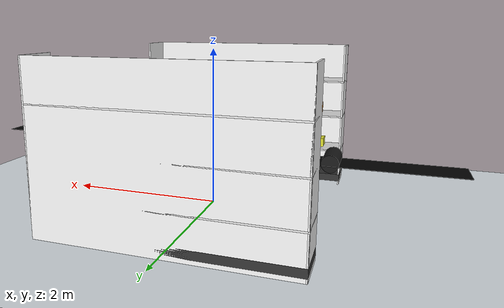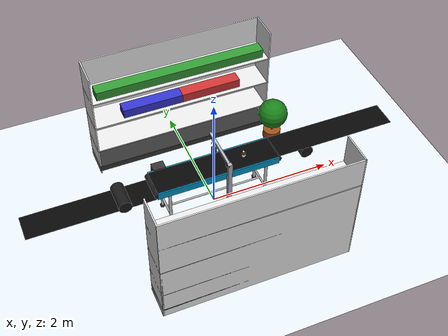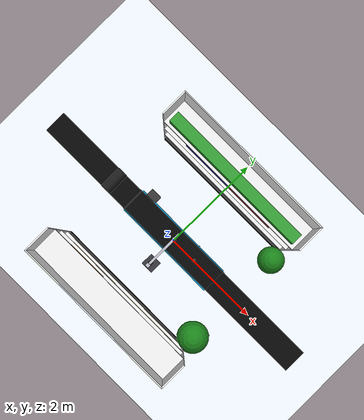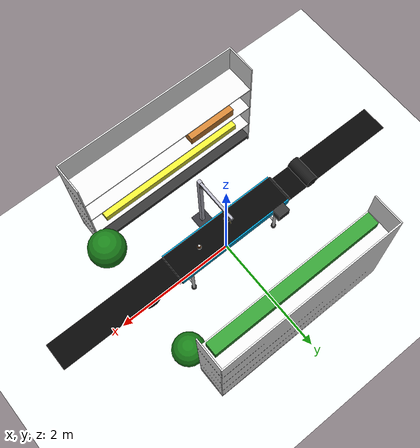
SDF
<sdf version="1.9">
 <world name="pharmacy_world">
  <physics name="1ms" type="ignored">
   <max_step_size>0.001</max_step_size>
   <real_time_factor>1.0</real_time_factor>
  </physics>
  <plugin filename="gz-sim-physics-system" name="gz::sim::systems::Physics"/>
  <plugin filename="gz-sim-user-commands-system" name="gz::sim::systems::UserCommands"/>
  <plugin filename="gz-sim-scene-broadcaster-system" name="gz::sim::systems::SceneBroadcaster"/>
  <plugin filename="gz-sim-sensors-system" name="gz::sim::systems::Sensors">
   <render_engine>ogre2</render_engine>
  </plugin>
  <scene><ambient>0.6 0.6 0.6 1.0</ambient><background>0.9 0.9 0.9 1.0</background><grid>false</grid></scene>
  <light type="point" name="ceiling_light_1">
   <pose>0 0 3 0 0 0</pose>
   <diffuse>0.9 0.9 0.9 1</diffuse>
   <specular>0.5 0.5 0.5 1</specular>
   <attenuation>
    <range>10</range>
    <constant>0.2</constant>
    <linear>0.1</linear>
    <quadratic>0.01</quadratic>
   </attenuation>
  </light>
  <light type="point" name="ceiling_light_2">
   <pose>2 0 3 0 0 0</pose>
   <diffuse>0.8 0.8 0.8 1</diffuse>
   <specular>0.3 0.3 0.3 1</specular>
   <attenuation>
    <range>10</range>
    <constant>0.2</constant>
    <linear>0.1</linear>
    <quadratic>0.01</quadratic>
   </attenuation>
   <cast_shadows>false</cast_shadows>
  </light>
  <model name="ground_plane">
   <static>true</static>
   <link name="link">
    <collision name="collision">
     <geometry><plane><normal>0 0 1</normal><size>100 100</size></plane></geometry>
    </collision>
    <visual name="visual">
     <geometry><plane><normal>0 0 1</normal><size>20 20</size></plane></geometry>
     <material>
      <ambient>0.9 0.93 0.95 1</ambient>
      <diffuse>0.9 0.93 0.95 1</diffuse>
      <specular>0.7 0.7 0.7 1</specular>
      <pbr><metal><roughness>0.2</roughness><metalness>0.1</metalness></metal></pbr>
     </material>
    </visual>
   </link>
  </model>
  <model name="moving_belt_A">
   <static>false</static>
   <pose>0 0 0.815 0 0 0</pose>
   <link name="belt_link">
    <visual name="visual">
     <geometry><box><size>2.0 0.44 0.004</size></box></geometry>
     <material>
      <ambient>0.02 0.02 0.02 1</ambient>
      <diffuse>0.02 0.02 0.02 1</diffuse>
      <specular>0.4 0.4 0.4 1</specular>
      <pbr><metal><roughness>0.7</roughness><metalness>0.0</metalness></metal></pbr>
     </material>
    </visual>
    <collision name="collision">
     <geometry><box><size>2.0 0.44 0.004</size></box></geometry>
     <surface><friction><ode><mu>100</mu><mu2>100</mu2></ode></friction></surface>
    </collision>
   </link>
   <plugin filename="ignition-gazebo-velocity-control-system" name="gz::sim::systems::VelocityControl"/>
  </model>
  <model name="moving_belt_B">
   <static>false</static>
   <pose>2.01 0 0.815 0 0 0</pose>
   <link name="belt_link">
    <visual name="visual">
     <geometry><box><size>2.0 0.44 0.004</size></box></geometry>
     <material>
      <ambient>0.02 0.02 0.02 1</ambient>
      <diffuse>0.02 0.02 0.02 1</diffuse>
      <specular>0.4 0.4 0.4 1</specular>
      <pbr><metal><roughness>0.7</roughness><metalness>0.0</metalness></metal></pbr>
     </material>
    </visual>
    <collision name="collision">
     <geometry><box><size>2.0 0.44 0.004</size></box></geometry>
     <surface><friction><ode><mu>100</mu><mu2>100</mu2></ode></friction></surface>
    </collision>
   </link>
   <plugin filename="ignition-gazebo-velocity-control-system" name="gz::sim::systems::VelocityControl"/>
  </model>
  <model name="moving_belt_A_return">
   <static>false</static>
   <pose>-2.01 0 0.68 0 0 0</pose>
   <link name="belt_link">
    <visual name="visual">
     <geometry><box><size>2.0 0.44 0.004</size></box></geometry>
     <material>
      <ambient>0.02 0.02 0.02 1</ambient>
      <diffuse>0.02 0.02 0.02 1</diffuse>
      <specular>0.4 0.4 0.4 1</specular>
      <pbr><metal><roughness>0.7</roughness><metalness>0.0</metalness></metal></pbr>
     </material>
    </visual>
    <collision name="collision">
     <geometry><box><size>2.0 0.44 0.004</size></box></geometry>
     <surface><friction><ode><mu>100</mu><mu2>100</mu2></ode></friction></surface>
    </collision>
   </link>
   <plugin filename="ignition-gazebo-velocity-control-system" name="gz::sim::systems::VelocityControl"/>
  </model>
  <model name="moving_belt_B_return">
   <static>false</static>
   <pose>0 0 0.68 0 0 0</pose>
   <link name="belt_link">
    <visual name="visual">
     <geometry><box><size>2.0 0.44 0.004</size></box></geometry>
     <material>
      <ambient>0.02 0.02 0.02 1</ambient>
      <diffuse>0.02 0.02 0.02 1</diffuse>
      <specular>0.4 0.4 0.4 1</specular>
      <pbr><metal><roughness>0.7</roughness><metalness>0.0</metalness></metal></pbr>
     </material>
    </visual>
    <collision name="collision">
     <geometry><box><size>2.0 0.44 0.004</size></box></geometry>
     <surface><friction><ode><mu>100</mu><mu2>100</mu2></ode></friction></surface>
    </collision>
   </link>
   <plugin filename="ignition-gazebo-velocity-control-system" name="gz::sim::systems::VelocityControl"/>
  </model>
  <model name="conveyor_belt">
   <static>true</static>
   <link name="support_structure">
    <visual name="leg_1">
     <pose>0.8 0.2 0.35 0 0 0</pose>
     <geometry><cylinder><radius>0.025</radius><length>0.7</length></cylinder></geometry>
     <material>
      <ambient>0.8 0.8 0.8 1</ambient>
      <diffuse>0.8 0.8 0.8 1</diffuse>
      <specular>0.5 0.5 0.5 1</specular>
     </material>
    </visual>
    <visual name="leg_2">
     <pose>0.8 -0.2 0.35 0 0 0</pose>
     <geometry><cylinder><radius>0.025</radius><length>0.7</length></cylinder></geometry>
     <material>
      <ambient>0.8 0.8 0.8 1</ambient>
      <diffuse>0.8 0.8 0.8 1</diffuse>
      <specular>0.5 0.5 0.5 1</specular>
     </material>
    </visual>
    <visual name="leg_3">
     <pose>-0.8 0.2 0.35 0 0 0</pose>
     <geometry><cylinder><radius>0.025</radius><length>0.7</length></cylinder></geometry>
     <material>
      <ambient>0.8 0.8 0.8 1</ambient>
      <diffuse>0.8 0.8 0.8 1</diffuse>
      <specular>0.5 0.5 0.5 1</specular>
     </material>
    </visual>
    <visual name="leg_4">
     <pose>-0.8 -0.2 0.35 0 0 0</pose>
     <geometry><cylinder><radius>0.025</radius><length>0.7</length></cylinder></geometry>
     <material>
      <ambient>0.8 0.8 0.8 1</ambient>
      <diffuse>0.8 0.8 0.8 1</diffuse>
      <specular>0.5 0.5 0.5 1</specular>
     </material>
    </visual>
    <visual name="foot_1">
     <pose>0.8 0.2 0.015 0 0 0</pose>
     <geometry><cylinder><radius>0.04</radius><length>0.03</length></cylinder></geometry>
     <material><ambient>0.1 0.1 0.1 1</ambient></material>
    </visual>
    <visual name="foot_2">
     <pose>0.8 -0.2 0.015 0 0 0</pose>
     <geometry><cylinder><radius>0.04</radius><length>0.03</length></cylinder></geometry>
     <material><ambient>0.1 0.1 0.1 1</ambient></material>
    </visual>
    <visual name="foot_3">
     <pose>-0.8 0.2 0.015 0 0 0</pose>
     <geometry><cylinder><radius>0.04</radius><length>0.03</length></cylinder></geometry>
     <material><ambient>0.1 0.1 0.1 1</ambient></material>
    </visual>
    <visual name="foot_4">
     <pose>-0.8 -0.2 0.015 0 0 0</pose>
     <geometry><cylinder><radius>0.04</radius><length>0.03</length></cylinder></geometry>
     <material><ambient>0.1 0.1 0.1 1</ambient></material>
    </visual>
    <visual name="roller_front">
     <pose>1.5 0 0.71 1.57 0 0</pose>
     <geometry><cylinder><radius>0.105</radius><length>0.44</length></cylinder></geometry>
     <material><ambient>0.1 0.1 0.1 1</ambient></material>
    </visual>
    <visual name="roller_back">
     <pose>-1.5 0 0.71 1.57 0 0</pose>
     <geometry><cylinder><radius>0.105</radius><length>0.44</length></cylinder></geometry>
     <material><ambient>0.1 0.1 0.1 1</ambient></material>
    </visual>
    <visual name="crossbeam_front">
     <pose>0.8 0 0.2 1.57 0 0</pose>
     <geometry><cylinder><radius>0.015</radius><length>0.4</length></cylinder></geometry>
     <material><ambient>0.7 0.7 0.7 1</ambient></material>
    </visual>
    <visual name="crossbeam_back">
     <pose>-0.8 0 0.2 1.57 0 0</pose>
     <geometry><cylinder><radius>0.015</radius><length>0.4</length></cylinder></geometry>
     <material><ambient>0.7 0.7 0.7 1</ambient></material>
    </visual>
    <visual name="crossbeam_long">
     <pose>0 0 0.2 0 1.57 0</pose>
     <geometry><cylinder><radius>0.015</radius><length>1.6</length></cylinder></geometry>
     <material><ambient>0.7 0.7 0.7 1</ambient></material>
    </visual>
   </link>
   <link name="frame">
    <pose>0 0 0.75 0 0 0</pose>
    <visual name="chassis">
     <geometry><box><size>2.0 0.45 0.12</size></box></geometry>
     <material>
      <ambient>0.15 0.15 0.15 1</ambient>
      <diffuse>0.15 0.15 0.15 1</diffuse>
      <specular>0.3 0.3 0.3 1</specular>
      <pbr><metal><roughness>0.4</roughness><metalness>0.2</metalness></metal></pbr>
     </material>
    </visual>
    <visual name="rail_left">
     <pose>0 0.235 0 0 0 0</pose>
     <geometry><box><size>2.0 0.02 0.12</size></box></geometry>
     <material>
      <ambient>0.0 0.6 0.8 1</ambient>
      <diffuse>0.0 0.6 0.8 1</diffuse>
      <specular>0.5 0.5 0.5 1</specular>
      <pbr><metal><roughness>0.3</roughness><metalness>0.0</metalness></metal></pbr>
     </material>
    </visual>
    <visual name="rail_right">
     <pose>0 -0.235 0 0 0 0</pose>
     <geometry><box><size>2.0 0.02 0.12</size></box></geometry>
     <material>
      <ambient>0.0 0.6 0.8 1</ambient>
      <diffuse>0.0 0.6 0.8 1</diffuse>
      <specular>0.5 0.5 0.5 1</specular>
      <pbr><metal><roughness>0.3</roughness><metalness>0.0</metalness></metal></pbr>
     </material>
    </visual>
    <visual name="roller_front">
     <pose>1.0 0 0 1.57 0 0</pose>
     <geometry><cylinder><radius>0.05</radius><length>0.45</length></cylinder></geometry>
     <material><ambient>0.1 0.1 0.1 1</ambient></material>
    </visual>
    <visual name="roller_back">
     <pose>-1.0 0 0 1.57 0 0</pose>
     <geometry><cylinder><radius>0.05</radius><length>0.45</length></cylinder></geometry>
     <material><ambient>0.1 0.1 0.1 1</ambient></material>
    </visual>
    <visual name="bolt_1">
     <pose>0.8 0.25 0 0 1.57 0</pose>
     <geometry><cylinder><radius>0.005</radius><length>0.02</length></cylinder></geometry>
     <material><ambient>0.8 0.8 0.8 1</ambient></material>
    </visual>
    <visual name="bolt_2">
     <pose>0.4 0.25 0 0 1.57 0</pose>
     <geometry><cylinder><radius>0.005</radius><length>0.02</length></cylinder></geometry>
     <material><ambient>0.8 0.8 0.8 1</ambient></material>
    </visual>
    <visual name="bolt_3">
     <pose>0.0 0.25 0 0 1.57 0</pose>
     <geometry><cylinder><radius>0.005</radius><length>0.02</length></cylinder></geometry>
     <material><ambient>0.8 0.8 0.8 1</ambient></material>
    </visual>
    <visual name="bolt_4">
     <pose>-0.4 0.25 0 0 1.57 0</pose>
     <geometry><cylinder><radius>0.005</radius><length>0.02</length></cylinder></geometry>
     <material><ambient>0.8 0.8 0.8 1</ambient></material>
    </visual>
    <visual name="bolt_5">
     <pose>-0.8 0.25 0 0 1.57 0</pose>
     <geometry><cylinder><radius>0.005</radius><length>0.02</length></cylinder></geometry>
     <material><ambient>0.8 0.8 0.8 1</ambient></material>
    </visual>
    <collision name="collision_chassis"><geometry><box><size>2.0 0.5 0.12</size></box></geometry></collision>
   </link>
   <link name="motor_housing">
    <pose>-0.8 0.3 0.75 0 0 0</pose>
    <visual name="motor_box">
     <geometry><box><size>0.2 0.15 0.15</size></box></geometry>
     <material>
      <ambient>0.2 0.2 0.2 1</ambient>
      <diffuse>0.2 0.2 0.2 1</diffuse>
      <specular>0.8 0.8 0.8 1</specular>
     </material>
    </visual>
    <visual name="motor_cylinder">
     <pose>0 -0.1 0 1.57 0 0</pose>
     <geometry><cylinder><radius>0.05</radius><length>0.1</length></cylinder></geometry>
     <material><ambient>0.1 0.1 0.1 1</ambient></material>
    </visual>
   </link>
  </model>
  <model name="camera_stand">
   <static>true</static>
   <pose>0 -0.6 0 0 0 0</pose>
   <link name="stand_structure">
    <visual name="post">
     <pose>0 0 0.7 0 0 0</pose>
     <geometry><box><size>0.06 0.06 1.4</size></box></geometry>
     <material>
      <ambient>0.7 0.7 0.75 1</ambient>
      <diffuse>0.7 0.7 0.75 1</diffuse>
      <specular>0.8 0.8 0.8 1</specular>
      <pbr><metal><roughness>0.3</roughness><metalness>0.6</metalness></metal></pbr>
     </material>
    </visual>
    <visual name="base_plate">
     <pose>0 0 0.01 0 0 0</pose>
     <geometry><box><size>0.25 0.25 0.02</size></box></geometry>
     <material><ambient>0.2 0.2 0.22 1</ambient><diffuse>0.2 0.2 0.22 1</diffuse></material>
    </visual>
    <visual name="arm">
     <pose>0 0.35 1.37 0 0 0</pose>
     <geometry><box><size>0.04 0.76 0.04</size></box></geometry>
     <material>
      <ambient>0.7 0.7 0.75 1</ambient>
      <diffuse>0.7 0.7 0.75 1</diffuse>
      <specular>0.8 0.8 0.8 1</specular>
      <pbr><metal><roughness>0.3</roughness><metalness>0.6</metalness></metal></pbr>
     </material>
    </visual>
    <visual name="corner_bracket">
     <pose>0 0.04 1.34 0 0 0</pose>
     <geometry><box><size>0.06 0.08 0.06</size></box></geometry>
     <material><ambient>0.1 0.1 0.1 1</ambient></material>
    </visual>
    <visual name="mount_mechanism">
     <pose>0 0.6 1.35 0 0 0</pose>
     <geometry><box><size>0.05 0.06 0.05</size></box></geometry>
     <material><ambient>0.1 0.1 0.1 1</ambient></material>
    </visual>
    <visual name="drop_rod">
     <pose>0 0.6 1.25 0 0 0</pose>
     <geometry><cylinder><radius>0.008</radius><length>0.15</length></cylinder></geometry>
     <material>
      <ambient>0.9 0.9 0.9 1</ambient>
      <diffuse>0.9 0.9 0.9 1</diffuse>
      <pbr><metal><roughness>0.1</roughness><metalness>1.0</metalness></metal></pbr>
     </material>
    </visual>
    <visual name="cam_body_main">
     <pose>0 0.6 1.15 0 0 0</pose>
     <geometry><box><size>0.06 0.06 0.08</size></box></geometry>
     <material>
      <ambient>0.1 0.15 0.3 1</ambient>
      <diffuse>0.1 0.15 0.3 1</diffuse>
      <specular>0.4 0.4 0.4 1</specular>
     </material>
    </visual>
    <visual name="cam_cap">
     <pose>0 0.6 1.19 0 0 0</pose>
     <geometry><box><size>0.058 0.058 0.005</size></box></geometry>
     <material><ambient>0.1 0.1 0.1 1</ambient></material>
    </visual>
    <visual name="cam_lens_barrel">
     <pose>0 0.6 1.10 0 0 0</pose>
     <geometry><cylinder><radius>0.02</radius><length>0.04</length></cylinder></geometry>
     <material><ambient>0.05 0.05 0.05 1</ambient></material>
    </visual>
    <visual name="cam_lens_glass">
     <pose>0 0.6 1.081 0 0 0</pose>
     <geometry><cylinder><radius>0.015</radius><length>0.002</length></cylinder></geometry>
     <material>
      <ambient>0.0 0.0 0.2 0.8</ambient>
      <diffuse>0.0 0.0 0.2 0.8</diffuse>
      <specular>0.9 0.9 0.9 1</specular>
      <emissive>0 0 0 1</emissive>
     </material>
    </visual>
    <visual name="ring_light_housing">
     <pose>0 0.6 1.09 0 0 0</pose>
     <geometry><cylinder><radius>0.04</radius><length>0.015</length></cylinder></geometry>
     <material><ambient>0.2 0.2 0.2 1</ambient></material>
    </visual>
    <visual name="ring_light_face">
     <pose>0 0.6 1.083 0 0 0</pose>
     <geometry><cylinder><radius>0.035</radius><length>0.002</length></cylinder></geometry>
     <material><ambient>0.9 0.9 1.0 1</ambient><emissive>0.5 0.5 0.6 1</emissive></material>
    </visual>
    <visual name="cable">
     <pose>0 0.66 1.25 0.5 0 0</pose>
     <geometry><cylinder><radius>0.003</radius><length>0.2</length></cylinder></geometry>
     <material><ambient>0.8 0.7 0.0 1</ambient></material>
    </visual>
    <sensor name="camera" type="camera">
     <pose>0 0.6 1.20 0 0.9 1.5708</pose>
     <camera>
      <horizontal_fov>1.047</horizontal_fov>
      <image><width>640</width><height>480</height></image>
      <clip><near>0.05</near><far>10</far></clip>
     </camera>
     <always_on>1</always_on>
     <update_rate>30</update_rate>
     <visualize>true</visualize>
     <topic>camera/image_raw</topic>
    </sensor>
   </link>
  </model>
  <include><uri>model://medicine_bottle</uri><name>medicine_bottle</name><pose>0.5 0 0.85 0 0 0</pose></include>
  <model name="shelf_left">
   <static>true</static>
   <pose>0 1.5 0 0 0 0</pose>
   <link name="link">
    <visual name="back">
     <pose>0 0.24 1.0 0 0 0</pose>
     <geometry><box><size>3 0.02 2</size></box></geometry>
     <material><ambient>0.95 0.95 0.95 1</ambient><diffuse>0.95 0.95 0.95 1</diffuse></material>
    </visual>
    <visual name="side1">
     <pose>1.49 0 1.0 0 0 0</pose>
     <geometry><box><size>0.02 0.5 2</size></box></geometry>
     <material><ambient>0.95 0.95 0.95 1</ambient><diffuse>0.95 0.95 0.95 1</diffuse></material>
    </visual>
    <visual name="side2">
     <pose>-1.49 0 1.0 0 0 0</pose>
     <geometry><box><size>0.02 0.5 2</size></box></geometry>
     <material><ambient>0.95 0.95 0.95 1</ambient><diffuse>0.95 0.95 0.95 1</diffuse></material>
    </visual>
    <visual name="shelf1">
     <pose>0 0 0.5 0 0 0</pose>
     <geometry><box><size>3 0.5 0.02</size></box></geometry>
     <material><ambient>0.9 0.9 0.9 1</ambient></material>
    </visual>
    <visual name="shelf2">
     <pose>0 0 1.0 0 0 0</pose>
     <geometry><box><size>3 0.5 0.02</size></box></geometry>
     <material><ambient>0.9 0.9 0.9 1</ambient></material>
    </visual>
    <visual name="shelf3">
     <pose>0 0 1.5 0 0 0</pose>
     <geometry><box><size>3 0.5 0.02</size></box></geometry>
     <material><ambient>0.9 0.9 0.9 1</ambient></material>
    </visual>
    <visual name="shelf4">
     <pose>0 0 0.1 0 0 0</pose>
     <geometry><box><size>3 0.5 0.1</size></box></geometry>
     <material><ambient>0.2 0.2 0.2 1</ambient></material>
    </visual>
    <visual name="items_row1">
     <pose>0 -0.1 1.6 0 0 0</pose>
     <geometry><box><size>2.8 0.2 0.15</size></box></geometry>
     <material><ambient>0.2 0.6 0.2 1</ambient><diffuse>0.2 0.6 0.2 1</diffuse></material>
    </visual>
    <visual name="items_row2">
     <pose>0.5 -0.1 1.1 0 0 0</pose>
     <geometry><box><size>1.0 0.2 0.15</size></box></geometry>
     <material><ambient>0.8 0.2 0.2 1</ambient><diffuse>0.8 0.2 0.2 1</diffuse></material>
    </visual>
    <visual name="items_row3">
     <pose>-0.5 -0.1 1.1 0 0 0</pose>
     <geometry><box><size>1.0 0.2 0.15</size></box></geometry>
     <material><ambient>0.2 0.2 0.8 1</ambient><diffuse>0.2 0.2 0.8 1</diffuse></material>
    </visual>
    <collision name="collision"><geometry><box><size>3 0.5 2</size></box></geometry></collision>
   </link>
  </model>
  <model name="shelf_right">
   <static>true</static>
   <pose>0 -1.5 0 0 0 3.1415</pose>
   <link name="link">
    <visual name="back">
     <pose>0 0.24 1.0 0 0 0</pose>
     <geometry><box><size>3 0.02 2</size></box></geometry>
     <material><ambient>0.95 0.95 0.95 1</ambient><diffuse>0.95 0.95 0.95 1</diffuse></material>
    </visual>
    <visual name="side1">
     <pose>1.49 0 1.0 0 0 0</pose>
     <geometry><box><size>0.02 0.5 2</size></box></geometry>
     <material><ambient>0.95 0.95 0.95 1</ambient><diffuse>0.95 0.95 0.95 1</diffuse></material>
    </visual>
    <visual name="side2">
     <pose>-1.49 0 1.0 0 0 0</pose>
     <geometry><box><size>0.02 0.5 2</size></box></geometry>
     <material><ambient>0.95 0.95 0.95 1</ambient><diffuse>0.95 0.95 0.95 1</diffuse></material>
    </visual>
    <visual name="shelf1">
     <pose>0 0 0.5 0 0 0</pose>
     <geometry><box><size>3 0.5 0.02</size></box></geometry>
     <material><ambient>0.9 0.9 0.9 1</ambient></material>
    </visual>
    <visual name="shelf2">
     <pose>0 0 1.0 0 0 0</pose>
     <geometry><box><size>3 0.5 0.02</size></box></geometry>
     <material><ambient>0.9 0.9 0.9 1</ambient></material>
    </visual>
    <visual name="shelf3">
     <pose>0 0 1.5 0 0 0</pose>
     <geometry><box><size>3 0.5 0.02</size></box></geometry>
     <material><ambient>0.9 0.9 0.9 1</ambient></material>
    </visual>
    <visual name="shelf4">
     <pose>0 0 0.1 0 0 0</pose>
     <geometry><box><size>3 0.5 0.1</size></box></geometry>
     <material><ambient>0.2 0.2 0.2 1</ambient></material>
    </visual>
    <visual name="items_row1">
     <pose>0 -0.1 0.6 0 0 0</pose>
     <geometry><box><size>2.5 0.2 0.12</size></box></geometry>
     <material><ambient>0.9 0.9 0.2 1</ambient><diffuse>0.9 0.9 0.2 1</diffuse></material>
    </visual>
    <visual name="items_row2">
     <pose>0.8 -0.1 1.1 0 0 0</pose>
     <geometry><box><size>0.8 0.2 0.15</size></box></geometry>
     <material><ambient>0.8 0.5 0.2 1</ambient><diffuse>0.8 0.5 0.2 1</diffuse></material>
    </visual>
    <collision name="collision"><geometry><box><size>3 0.5 2</size></box></geometry></collision>
   </link>
  </model>
  <model name="potted_plant_1">
   <static>true</static>
   <pose>1.5 1.0 0 0 0 0</pose>
   <link name="link">
    <visual name="pot">
     <geometry><cylinder><radius>0.15</radius><length>0.3</length></cylinder></geometry>
     <material><ambient>0.6 0.3 0.1 1</ambient><diffuse>0.6 0.3 0.1 1</diffuse></material>
    </visual>
    <visual name="stem">
     <pose>0 0 0.3 0 0 0</pose>
     <geometry><cylinder><radius>0.02</radius><length>0.4</length></cylinder></geometry>
     <material><ambient>0.1 0.5 0.1 1</ambient></material>
    </visual>
    <visual name="leaves">
     <pose>0 0 0.5 0 0 0</pose>
     <geometry><sphere><radius>0.25</radius></sphere></geometry>
     <material><ambient>0.1 0.5 0.1 1</ambient><diffuse>0.1 0.5 0.1 1</diffuse></material>
    </visual>
   </link>
  </model>
  <model name="potted_plant_2">
   <static>true</static>
   <pose>1.5 -1.0 0 0 0 0</pose>
   <link name="link">
    <visual name="pot">
     <geometry><cylinder><radius>0.15</radius><length>0.3</length></cylinder></geometry>
     <material><ambient>0.6 0.3 0.1 1</ambient><diffuse>0.6 0.3 0.1 1</diffuse></material>
    </visual>
    <visual name="leaves">
     <pose>0 0 0.4 0 0 0</pose>
     <geometry><sphere><radius>0.3</radius></sphere></geometry>
     <material><ambient>0.1 0.5 0.1 1</ambient><diffuse>0.1 0.5 0.1 1</diffuse></material>
    </visual>
   </link>
  </model>
 </world>
</sdf>

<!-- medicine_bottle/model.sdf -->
<sdf version="1.9">
  <model name="medicine_bottle">
    <static>false</static>
    <link name="link">
      <inertial>
        <mass>0.1</mass>
        <inertia>
          <ixx>0.0001</ixx> <ixy>0</ixy> <ixz>0</ixz>
          <iyy>0.0001</iyy> <iyz>0</iyz>
          <izz>0.0001</izz>
        </inertia>
      </inertial>

      <collision name="collision">
        <geometry>
          <cylinder>
            <radius>0.03</radius>
            <length>0.1</length>
          </cylinder>
        </geometry>
        <surface>
          <friction>
            <ode>
              <mu>0.8</mu>
              <mu2>0.8</mu2>
            </ode>
          </friction>
        </surface>
      </collision>

      <!-- 1. Main Bottle Body (Brown Glass) -->
      <visual name="body_visual">
        <pose>0 0 -0.015 0 0 0</pose> <!-- Shifted down to make room for neck -->
        <geometry>
          <cylinder>
            <radius>0.03</radius>
            <length>0.07</length>
          </cylinder>
        </geometry>
        <material>
          <ambient>0.4 0.2 0.05 1</ambient>
          <diffuse>0.4 0.2 0.05 1</diffuse>
          <specular>0.8 0.8 0.8 1</specular>
          <pbr>
            <metal>
              <roughness>0.1</roughness>
              <metalness>0.1</metalness>
            </metal>
          </pbr>
        </material>
      </visual>

      <!-- 2. Bottle Shoulder (Sphere/Cylinder transition) -->
      <visual name="shoulder_visual">
        <pose>0 0 0.02 0 0 0</pose>
        <geometry>
            <sphere>
                <radius>0.0295</radius>
            </sphere>
        </geometry>
        <material>
          <ambient>0.4 0.2 0.05 1</ambient>
          <diffuse>0.4 0.2 0.05 1</diffuse>
          <specular>0.8 0.8 0.8 1</specular>
          <pbr>
            <metal>
              <roughness>0.1</roughness>
              <metalness>0.1</metalness>
            </metal>
          </pbr>
        </material>
      </visual>

      <!-- 3. Needle/Neck -->
      <visual name="neck_visual">
        <pose>0 0 0.035 0 0 0</pose>
        <geometry>
          <cylinder>
            <radius>0.015</radius>
            <length>0.03</length>
          </cylinder>
        </geometry>
        <material>
          <ambient>0.4 0.2 0.05 1</ambient>
          <diffuse>0.4 0.2 0.05 1</diffuse>
           <specular>0.8 0.8 0.8 1</specular>
           <pbr>
            <metal>
              <roughness>0.1</roughness>
              <metalness>0.1</metalness>
            </metal>
          </pbr>
        </material>
      </visual>

      <!-- 4. Label (High Res Texture) -->
      <visual name="label_visual">
        <pose>0 0 -0.015 0 0 0</pose>
        <geometry>
          <cylinder>
            <radius>0.0305</radius>
            <length>0.055</length>
          </cylinder>
        </geometry>
        <material>
          <ambient>1 1 1 1</ambient>
          <diffuse>1 1 1 1</diffuse>
          <specular>0.1 0.1 0.1 1</specular>
          <pbr>
            <metal>
              <albedo_map>model://medicine_bottle/materials/textures/label.png</albedo_map>
              <roughness>0.7</roughness>
              <metalness>0.0</metalness>
            </metal>
          </pbr>
        </material>
      </visual>

      <!-- 5. Cap (White ribbed plastic) -->
      <visual name="cap_visual">
        <pose>0 0 0.05 0 0 0</pose>
        <geometry>
          <cylinder>
            <radius>0.018</radius>
            <length>0.015</length>
          </cylinder>
        </geometry>
        <material>
          <ambient>0.95 0.95 0.95 1</ambient>
          <diffuse>0.95 0.95 0.95 1</diffuse>
          <specular>0.2 0.2 0.2 1</specular>
          <pbr>
            <metal>
              <roughness>0.5</roughness>
              <metalness>0.0</metalness>
            </metal>
          </pbr>
        </material>
      </visual>

    </link>
  </model>
</sdf>
